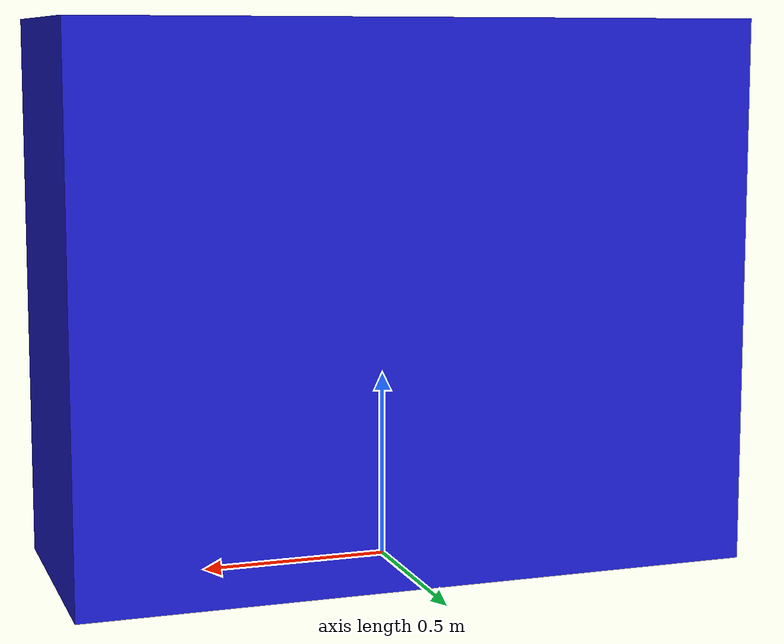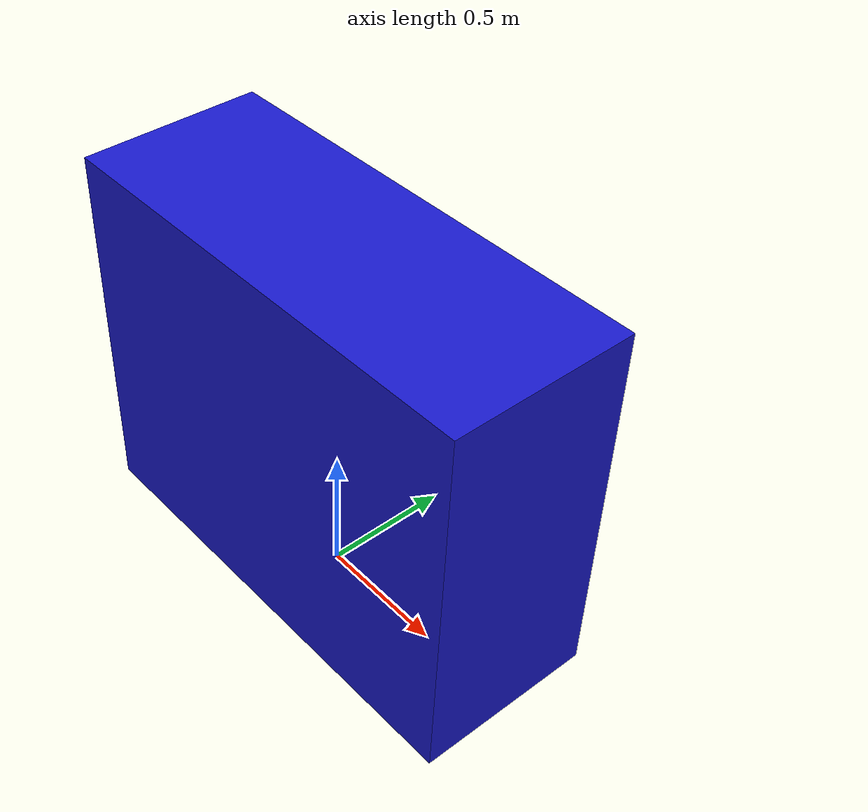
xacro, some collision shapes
<?xml version="1.0"?>

<robot name="mec_agv"
       xmlns:xacro="http://www.ros.org/wiki/xacro">

  <!-- INCLUDE FILES -->

  <xacro:include filename="$(find mec_mobile_description)/urdf/base.urdf.xacro"/>
  <xacro:include filename="$(find mec_mobile_description)/urdf/wheel.urdf.xacro"/>
  <xacro:include filename="$(find mec_mobile_description)/urdf/lidar.urdf.xacro"/>
  <xacro:include filename="$(find mec_mobile_description)/urdf/imu.urdf.xacro"/>

  <!-- BASE FOOTPRINT -->

  <link name="base_footprint"/>

  <joint name="base_footprint_joint"
         type="fixed">

    <parent link="base_footprint"/>
    <child link="base_link"/>

      <origin xyz="0 0 0.08"
            rpy="0 0 0"/>

  </joint>

  <!-- BASE -->

  <xacro:base_link/>

  <!-- DRIVE WHEELS -->

  <!-- LEFT DRIVE WHEEL -->
  <xacro:wheel
      wheel_name="left_drive_wheel"
      x="0.0"
      y="0.25"
      z="0.0"/>

  <!-- RIGHT DRIVE WHEEL -->
  <xacro:wheel
      wheel_name="right_drive_wheel"
      x="0.0"
      y="-0.25"
      z="0.0"/>

 <!-- FRONT LIDAR -->
 <xacro:lidar_link
    lidar_name="front_lidar"
    x="0.82"
    y="0.28"
    z="0.07"
    roll="1.57"
    pitch="0"
    yaw="-0.7854"/>

 <!-- REAR LIDAR -->
 <xacro:lidar_link
    lidar_name="rear_lidar"
    x="-0.82"
    y="-0.28"
    z="0.07"
    roll="1.57"
    pitch="0"
    yaw="2.3562"/>
  <!-- IMU -->

  <xacro:imu_link
      x="0.0"
      y="0.0"
      z="0.35"/>

</robot>

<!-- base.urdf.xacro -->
<robot xmlns:xacro="http://www.ros.org/wiki/xacro">

<xacro:macro name="base_link"
              params="">

  <link name="base_link">

  <visual>
      <origin xyz="0 0 0" rpy="0 0 3.14159"/>
      <geometry>
          <mesh filename="file://$(find mec_mobile_description)/meshes/base.stl"
                scale="0.001 0.001 0.001"/>
      </geometry>
      <material name="blue_agv">
          <color rgba="0.1 0.1 0.8 1.0"/>
      </material>
  </visual>

    <!-- COLLISION -->
    <collision>

      <origin xyz="0 0 0.645"/>

      <geometry>
        <box size="1.8 0.7 1.45"/>
      </geometry>

    </collision>

    <!-- INERTIAL -->
    <inertial>
    <!-- trọng tâm dồn thấp: z = 0.3m so với base_link -->
    <origin xyz="0 0 0.3"/>
    <mass value="450.0"/>
    <inertia
        ixx="97.59"
        ixy="0.0"
        ixz="0.0"
        iyy="200.21"
        iyz="0.0"
        izz="139.87"/>
    </inertial>

  </link>

</xacro:macro>

</robot>

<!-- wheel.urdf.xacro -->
<robot xmlns:xacro="http://www.ros.org/wiki/xacro">

<xacro:macro name="wheel"
              params="wheel_name x y z">

  <!-- LINK -->
  <link name="${wheel_name}">

    <visual>

      <origin xyz="0 0 0"
              rpy="0 0 0"/>

      <geometry>

        <mesh filename="file://$(find mec_mobile_description)/meshes/wheel.stl"
              scale="0.001 0.001 0.001"/>

      </geometry>

    </visual>

    <collision>

      <!-- Xoay 90 do quanh X de truc cylinder trung voi truc Y -->
        <origin xyz="0 0 0" rpy="1.5708 0 0"/>
        <geometry>
            <cylinder radius="0.08" length="0.04"/>
        </geometry>
    </collision>

  <inertial>
      <mass value="6.0"/>
      <!-- cylinder: radius=0.08m, length=0.04m, trục quay y -->
      <!-- ixx=iyy = (1/12)*m*(3r²+l²) = (1/12)*6*(3*0.0064+0.0016) = 0.0106 -->
      <!-- izz = (1/2)*m*r² = 0.5*6*0.0064 = 0.0192 -->
      <origin xyz="0 0 0"/>
      <inertia
          ixx="0.0106"
          ixy="0.0"
          ixz="0.0"
          iyy="0.0192"
          iyz="0.0"
          izz="0.0106"/>
  </inertial>

  </link>

  <!-- JOINT -->
  <joint name="${wheel_name}_joint"
         type="continuous">

    <parent link="base_link"/>

    <child link="${wheel_name}"/>

    <origin xyz="${x} ${y} ${z}"
            rpy="0 0 0"/>

    <!-- ROS wheel axis -->
    <axis xyz="0 1 0"/>

  </joint>

</xacro:macro>

</robot>

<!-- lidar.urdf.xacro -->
<robot xmlns:xacro="http://www.ros.org/wiki/xacro">
<xacro:macro name="lidar_link"
    params="lidar_name x y z roll pitch yaw">

    <link name="${lidar_name}">
        <visual>
                      <!-- Visual xoay rieng de mesh hien thi dung -->
            <origin xyz="0 0 0" rpy="1.5708 0 0"/>
            <geometry>
                <mesh filename="file://$(find mec_mobile_description)/meshes/lidar.stl"
                      scale="0.001 0.001 0.001"/>
            </geometry>
        </visual>
        <collision>
            <geometry>
                <cylinder radius="0.04" length="0.07"/>
            </geometry>
        </collision>
        <inertial>
            <mass value="0.3"/>
            <inertia ixx="0.0001" ixy="0" ixz="0"
                     iyy="0.0001" iyz="0" izz="0.0001"/>
        </inertial>
    </link>

    <joint name="${lidar_name}_joint" type="fixed">
        <parent link="base_link"/>
        <child link="${lidar_name}"/>
        <origin xyz="${x} ${y} ${z}" rpy="${roll} ${pitch} ${yaw}"/>
    </joint>

    <!-- Gazebo sensor plugin -->
    <gazebo reference="${lidar_name}">
        <sensor name="${lidar_name}_sensor" type="gpu_lidar">

            <topic>${lidar_name}/scan</topic>
            <update_rate>20</update_rate>
            <always_on>true</always_on>
            <visualize>true</visualize>
            <gz_frame_id>${lidar_name}</gz_frame_id>
            <lidar>
                <scan>
                    <horizontal>
                        <!-- Tim 320: 320 beams, 270 deg FOV -->
                        <!-- Richbeam: dieu chinh theo spec thuc te -->
                        <samples>320</samples>
                        <resolution>1</resolution>
                        <min_angle>-2.35619</min_angle>
                        <max_angle>2.35619</max_angle>
                    </horizontal>
                </scan>
                <range>
                    <min>0.1</min>
                    <max>20.0</max>
                    <resolution>0.01</resolution>
                </range>
                <noise>
                    <type>gaussian</type>
                    <mean>0.0</mean>
                    <stddev>0.01</stddev>
                </noise>
            </lidar>

        </sensor>
    </gazebo>

</xacro:macro>
</robot>

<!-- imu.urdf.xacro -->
<robot xmlns:xacro="http://www.ros.org/wiki/xacro">
<xacro:macro name="imu_link" params="x y z">

  <link name="imu_link">
    <visual>
      <geometry>
        <mesh filename="file://$(find mec_mobile_description)/meshes/imu.stl"
              scale="0.001 0.001 0.001"/>
      </geometry>
      <material name="blue">
        <color rgba="0.2 0.5 1.0 1.0"/>
      </material>
    </visual>
    <inertial>
      <mass value="0.05"/>
      <inertia ixx="0.00001" ixy="0" ixz="0"
               iyy="0.00001" iyz="0" izz="0.00001"/>
    </inertial>
  </link>

  <joint name="imu_joint" type="fixed">
    <parent link="base_link"/>
    <child link="imu_link"/>
    <origin xyz="${x} ${y} ${z}" rpy="0 0 0"/>
  </joint>

  <gazebo reference="imu_link">
    <sensor name="imu_sensor" type="imu">
      <always_on>true</always_on>
      <update_rate>100</update_rate>
      <topic>imu</topic>
      <gz_frame_id>imu_link</gz_frame_id>    <!-- fix frame_id -->
      <imu>
        <angular_velocity>
          <x><noise type="gaussian"><mean>0.0</mean><stddev>0.0002</stddev></noise></x>
          <y><noise type="gaussian"><mean>0.0</mean><stddev>0.0002</stddev></noise></y>
          <z><noise type="gaussian"><mean>0.0</mean><stddev>0.0002</stddev></noise></z>
        </angular_velocity>
        <linear_acceleration>
          <x><noise type="gaussian"><mean>0.0</mean><stddev>0.0017</stddev></noise></x>
          <y><noise type="gaussian"><mean>0.0</mean><stddev>0.0017</stddev></noise></y>
          <z><noise type="gaussian"><mean>0.0</mean><stddev>0.0017</stddev></noise></z>
        </linear_acceleration>
      </imu>
    </sensor>
  </gazebo>

</xacro:macro>
</robot>
